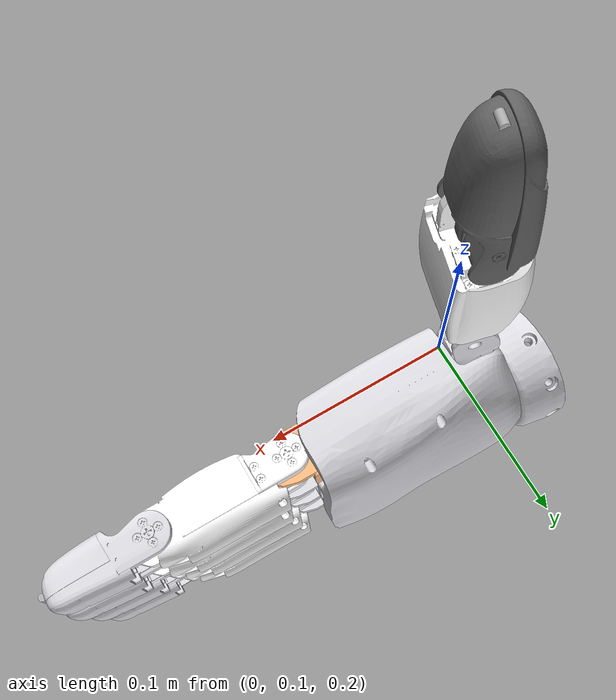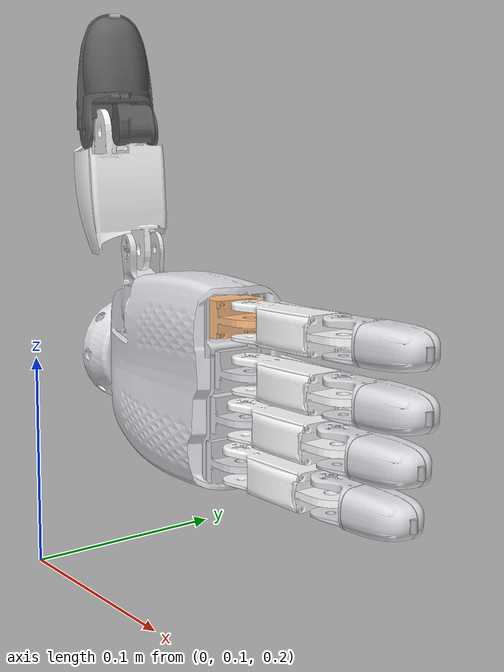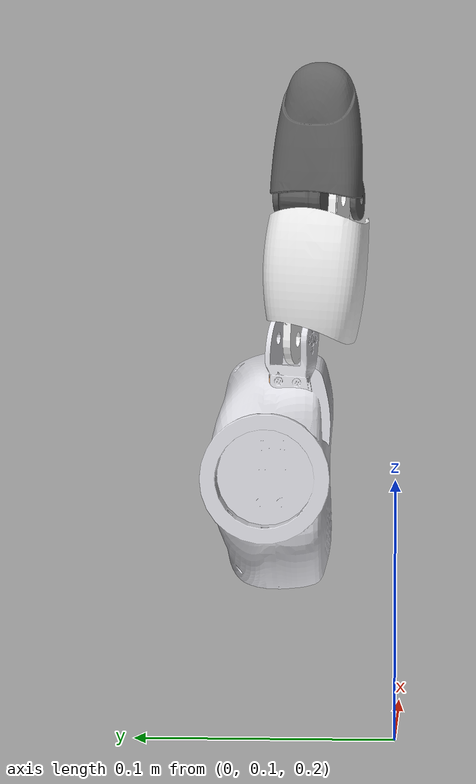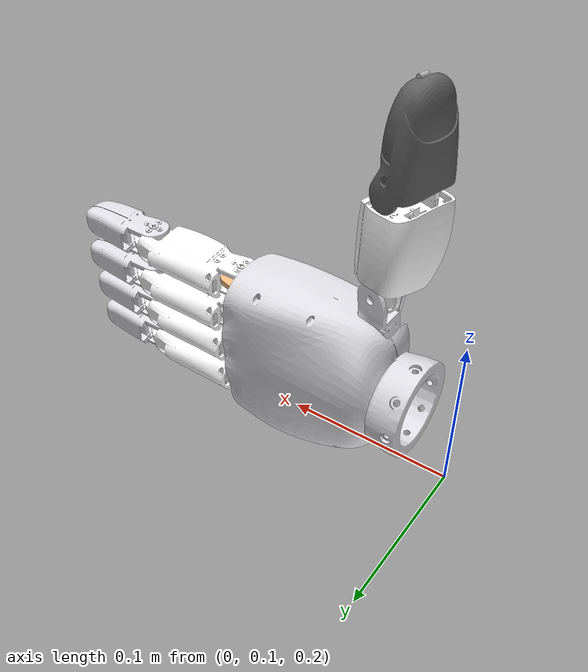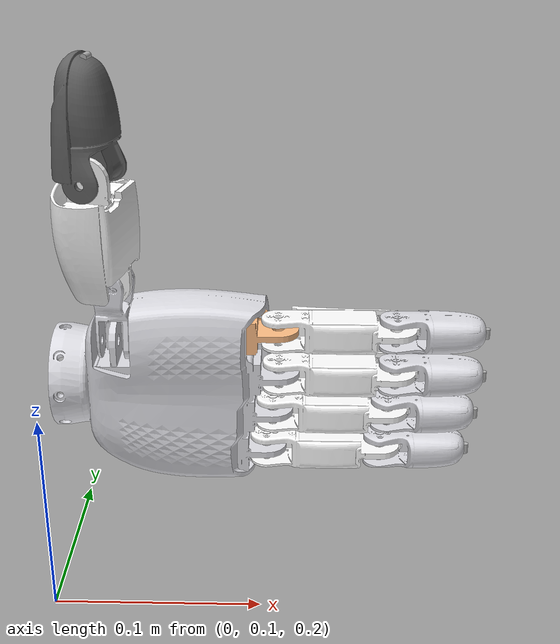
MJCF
<mujoco model="xhand_left">
  <compiler angle="radian" meshdir="meshes/" />

  <default>
    <!-- disable all contacts and use explicit collision pairs -->
    <geom density="800" condim="1" contype="0" conaffinity="0" />
    <!-- with this setting, the response time is around 1s -->
    <position kp="300" dampratio="1.0" inheritrange="1" />
    <joint damping="0.0" armature="1.0" frictionloss="0.0" />
    <site size="0.005" type="sphere" rgba="1 0 0 1" group="3" />
  </default>

  <asset>
    <texture type="skybox" builtin="gradient" rgb1="0.3 0.5 0.7" rgb2="0 0 0" width="512"
      height="3072" />
    <texture type="2d" name="left_groundplane" builtin="checker" mark="edge" rgb1="0.2 0.3 0.4"
      rgb2="0.1 0.2 0.3"
      markrgb="0.8 0.8 0.8" width="300" height="300" />
    <material name="left_groundplane" texture="left_groundplane" texuniform="true"
      texrepeat="5 5"
      reflectance="0.2" />
    <mesh name="left_hand_link" content_type="model/stl" file="left_hand_link.STL" />
    <mesh name="left_hand_thumb_bend_link" content_type="model/stl"
      file="left_hand_thumb_bend_link.STL" />
    <mesh name="left_hand_thumb_rota_link1" content_type="model/stl"
      file="left_hand_thumb_rota_link1.STL" />
    <mesh name="left_hand_thumb_rota_link2" content_type="model/stl"
      file="left_hand_thumb_rota_link2.STL" />
    <mesh name="left_hand_index_bend_link" content_type="model/stl"
      file="left_hand_index_bend_link.STL" />
    <mesh name="left_hand_index_rota_link1" content_type="model/stl"
      file="left_hand_index_rota_link1.STL" />
    <mesh name="left_hand_index_rota_link2" content_type="model/stl"
      file="left_hand_index_rota_link2.STL" />
    <mesh name="left_hand_mid_link1" content_type="model/stl" file="left_hand_mid_link1.STL" />
    <mesh name="left_hand_mid_link2" content_type="model/stl" file="left_hand_mid_link2.STL" />
    <mesh name="left_hand_ring_link1" content_type="model/stl" file="left_hand_ring_link1.STL" />
    <mesh name="left_hand_ring_link2" content_type="model/stl" file="left_hand_ring_link2.STL" />
    <mesh name="left_hand_pinky_link1" content_type="model/stl" file="left_hand_pinky_link1.STL" />
    <mesh name="left_hand_pinky_link2" content_type="model/stl" file="left_hand_pinky_link2.STL" />
    <mesh name="left_hand_thumb_rota_tip" content_type="model/stl" file="left_hand_thumb_rota_tip.STL" />
    <mesh name="left_hand_index_rota_tip" content_type="model/stl" file="left_hand_index_rota_tip.STL" />
    <mesh name="left_hand_mid_tip" content_type="model/stl" file="left_hand_mid_tip.STL" />
    <mesh name="left_hand_ring_tip" content_type="model/stl" file="left_hand_ring_tip.STL" />
    <mesh name="left_hand_pinky_tip" content_type="model/stl" file="left_hand_pinky_tip.STL" />
  </asset>

  <worldbody>
    <body name="L_forearm_ty_link" pos="0 0.15 0.3" quat="0.707107 0 -0.707107 0">
      <camera name="left_track" pos="0.868 -0.348 -0.175"
        xyaxes="0.037 0.999 -0.000 0.011 -0.000 1.000" />
      <inertial pos="0 0 0" mass="0.1" diaginertia="0.01 0.01 0.01" />
      <joint name="L_forearm_tx_link_joint" pos="0 0 0" axis="1 0 0" type="slide" range="-5 5"
      />
      <body name="L_forearm_tz_link">
        <inertial pos="0 0 0" mass="0.1" diaginertia="0.01 0.01 0.01" />
        <joint name="L_forearm_ty_link_joint" pos="0 0 0" axis="0 1 0" type="slide" range="-5 5"
        />
        <body name="L_forearm_roll_link">
          <inertial pos="0 0 0" mass="0.1" diaginertia="0.01 0.01 0.01" />
          <joint name="L_forearm_tz_link_joint" pos="0 0 0" axis="0 0 1" type="slide" range="-5 5"
          />
          <body name="L_forearm_pitch_link">
            <inertial pos="0 0 0" mass="0.1" diaginertia="0.01 0.01 0.01" />
            <joint name="L_forearm_roll_link_joint" pos="0 0 0" axis="0 0 1" range="-6.2 6.2"
            />
            <body name="L_forearm_yaw_link">
              <inertial pos="0 0 0" mass="0.1" diaginertia="0.01 0.01 0.01" />
              <joint name="L_forearm_pitch_link_joint" pos="0 0 0" axis="1 0 0" range="-6.2 6.2"
              />
              <body name="left_hand_link">
                <inertial pos="0.003326693 0.01017817 -0.05706105"
                  quat="0.08635017 0.6968598 0.7062295 0.09038768" mass="0.5393014"
                  diaginertia="0.000644606 0.000477684 0.00026465" />
                <joint name="L_forearm_yaw_link_joint" pos="0 0 0" axis="0 -1 0" range="-6.2 6.2"
                />
                <geom name="left_hand_link_visual" type="mesh" contype="0" conaffinity="0" group="1"
                  density="0" rgba="0.866667 0.866667 0.890196 1" mesh="left_hand_link" />
                <geom name="collision_hand_left_palm_0" type="mesh"
                  mesh="left_hand_link"
                  rgba="0.792157 0.819608 0.933333 1" />
                <site name="left_palm" pos="0 0 0" type="box" size="0.01 0.02 0.03" quat="0 1 -1 0" />
                <body name="left_hand_thumb_bend_link" pos="0.0228 -0.0095 -0.0305">
                  <inertial pos="-0.0144315 -0.001166536 -6.50666e-05"
                    quat="0.7321306 -0.04207065 -0.6795136 0.02182089" mass="0.01151453"
                    diaginertia="1.57533e-06 1.55076e-06 6.13913e-07" />
                  <joint name="left_hand_thumb_bend_joint" pos="0 0 0" axis="0 0 -1" range="0 1.83"
                  />
                  <geom name="left_thumb_bend_visual" type="mesh" contype="0" conaffinity="0"
                    group="1" density="0" rgba="0.890196 0.890196 0.913725 1"
                    mesh="left_hand_thumb_bend_link" />
                  <geom name="collision_hand_left_thumb_2" type="mesh"
                    mesh="left_hand_thumb_bend_link"
                    rgba="0.890196 0.890196 0.913725 1" />
                  <body name="left_hand_thumb_rota_link1" pos="0.028599 -0.0083177 0.00178"
                    quat="0.99124 -0.130499 0.00265603 -0.0201745">
                    <inertial pos="-0.0286994 -0.000353013 -0.001352106"
                      quat="0.7021874 -0.02743187 -0.6773014 -0.2178144" mass="0.1322853"
                      diaginertia="4.41087e-05 3.90795e-05 1.39818e-05" />
                    <joint name="left_hand_thumb_rota_joint1" pos="0 0 0" axis="0 1 0"
                      range="-1.05 1.57" />
                    <geom name="left_thumb_rota1_visual" type="mesh" contype="0" conaffinity="0"
                      group="1" density="0" rgba="1 1 1 1" mesh="left_hand_thumb_rota_link1" />
                    <geom name="collision_hand_left_thumb_1" type="mesh"
                      mesh="left_hand_thumb_rota_link1"
                      rgba="1 1 1 1" />
                    <body name="left_hand_thumb_rota_link2" pos="0.0553 0 0">
                      <inertial pos="-0.02284143 -0.000460794 -0.0005782516"
                        quat="-0.6896071 -0.0962808 0.7123287 0.08809048" mass="0.03516871"
                        diaginertia="9.05675e-06 7.69941e-06 3.49384e-06" />
                      <joint name="left_hand_thumb_rota_joint2" pos="0 0 0" axis="0 1 0"
                        range="-0.17 1.83" />
                      <geom name="left_thumb_rota2_visual" type="mesh" contype="0" conaffinity="0"
                        group="1" density="0" rgba="0.384314 0.384314 0.384314 1"
                        mesh="left_hand_thumb_rota_link2" />
                      <geom name="collision_hand_left_thumb_0" type="mesh"
                        mesh="left_hand_thumb_rota_link2"
                        rgba="0.384314 0.384314 0.384314 1" />
                      <geom name="collision_hand_left_thumb_tip" type="mesh"
                        pos="0.0504025 0 0"
                        mesh="left_hand_thumb_rota_tip"
                        rgba="0.698039 0.698039 0.698039 1" />
                      <geom size="0.001" pos="0.0504017 0 0" contype="0" conaffinity="0" group="1"
                        density="0" rgba="0.698039 0.698039 0.698039 1" />
                      <site name="left_thumb_tip" pos="0.0504 0 0" />
                      <site name="track_hand_left_thumb_tip" pos="0.04 0 -0.012" />
                      <site name="contact_left_thumb_tip" type="box" group="4" rgba="0 0.8 1 1" size="0.015515 0.01505 0.00711" pos="0.035355 0 -0.0042" />
                      <site name="trace_hand_left_thumb_tip" pos="0.04 0 -0.012" />
                    </body>
                  </body>
                </body>
                <body name="left_hand_index_bend_link" pos="0.0265 -0.0065 -0.0899">
                  <inertial pos="0.0001189976 -0.0007158512 -0.0111903"
                    quat="0.00083178 -0.004035523 0.004995498 0.999979" mass="0.068721"
                    diaginertia="1.70709e-05 1.64313e-05 3.42781e-06" />
                  <joint name="left_hand_index_bend_joint" pos="0 0 0" axis="0 1 0"
                    range="-0.175 0.175" />
                  <geom name="left_index_bend_visual" type="mesh" contype="0" conaffinity="0"
                    group="1" density="0" rgba="0.988235 0.737255 0.517647 1"
                    mesh="left_hand_index_bend_link" />

                  <body name="left_hand_index_rota_link1" pos="0 0 -0.0178">
                    <inertial pos="0.0001330081 0.0006329305 -0.03558687"
                      quat="-0.006912748 0.9999205 0.003662729 0.009890605" mass="0.06298297"
                      diaginertia="1.73856e-05 1.68626e-05 3.19183e-06" />
                    <joint name="left_hand_index_joint1" pos="0 0 0" axis="-1 0 0" range="0 1.92"
                    />
                    <geom name="left_index_rota1_visual" type="mesh" contype="0" conaffinity="0"
                      group="1" density="0" rgba="1 1 1 1" mesh="left_hand_index_rota_link1" />
                    <geom name="collision_hand_left_index_1" type="mesh"
                      mesh="left_hand_index_rota_link1"
                      rgba="1 1 1 1" />
                    <body name="left_hand_index_rota_link2" pos="0 0 -0.0558">
                      <inertial pos="-0.0002483621 0.001199052 -0.02137899"
                        quat="-0.6787521 -0.03469798 0.008190274 0.7335016" mass="0.01582395"
                        diaginertia="2.8328e-06 2.77713e-06 8.40076e-07" />
                      <joint name="left_hand_index_joint2" pos="0 0 0" axis="-1 0 0" range="0 1.92"
                      />
                      <geom name="left_index_rota2_visual" type="mesh" contype="0" conaffinity="0"
                        group="1" density="0" rgba="0.866667 0.866667 0.890196 1"
                        mesh="left_hand_index_rota_link2" />
                      <geom name="collision_hand_left_index_0" type="mesh"
                        mesh="left_hand_index_rota_link2"
                        rgba="0.866667 0.866667 0.890196 1" />
                      <geom name="collision_hand_left_index_tip" type="mesh"
                        pos="0 0 -0.0425"
                        mesh="left_hand_index_rota_tip"
                        rgba="0.698039 0.698039 0.698039 1" />
                      <geom size="0.001" pos="0 0 -0.0425" contype="0" conaffinity="0" group="1"
                        density="0" rgba="0.698039 0.698039 0.698039 1" />
                      <site name="left_index_tip" pos="0 0 -0.0425" />
                      <site name="track_hand_left_index_tip" pos="0 -0.004 -0.027" />
                      <site name="contact_left_index_tip" type="box" group="4" rgba="0 0.8 1 1" size="0.00832 0.00607 0.011995" pos="0 -0.00487 -0.030085" />
                      <site name="trace_hand_left_index_tip" pos="0 -0.004 -0.027" />
                    </body>
                  </body>
                </body>
                <body name="left_hand_mid_link1" pos="0.004 -0.0065 -0.1082">
                  <inertial pos="3.580491e-05 0.0005304176 -0.03327847"
                    quat="-0.03171207 0.9993015 0.01682587 0.01038419" mass="0.06298297"
                    diaginertia="1.73861e-05 1.6865e-05 3.18891e-06" />
                  <joint name="left_hand_mid_joint1" pos="0 0 0" axis="-1 0 0" range="0 1.92"
                  />
                  <geom name="left_middle_link1_visual" type="mesh" contype="0" conaffinity="0"
                    group="1" density="0" rgba="1 1 1 1" mesh="left_hand_mid_link1" />
                  <geom name="collision_hand_left_middle_1" type="mesh"
                    mesh="left_hand_mid_link1"
                    rgba="1 1 1 1" />
                  <body name="left_hand_mid_link2" pos="0 0 -0.0558">
                    <inertial pos="-0.0002483617 0.001199052 -0.02137899"
                      quat="-0.01245416 0.7159392 0.6959296 0.05438782" mass="0.01582395"
                      diaginertia="2.88792e-06 2.83727e-06 8.44807e-07" />
                    <joint name="left_hand_mid_joint2" pos="0 0 0" axis="-1 0 0" range="0 1.92"
                    />
                    <geom name="left_middle_link2_visual" type="mesh" contype="0" conaffinity="0"
                      group="1" density="0" rgba="0.866667 0.866667 0.890196 1"
                      mesh="left_hand_mid_link2" />
                    <geom name="collision_hand_left_middle_0" type="mesh"
                      mesh="left_hand_mid_link2"
                      rgba="0.866667 0.866667 0.890196 1" />
                    <geom name="collision_hand_left_middle_tip" type="mesh"
                      pos="0 0 -0.042107"
                      mesh="left_hand_mid_tip"
                      rgba="0.698039 0.698039 0.698039 1" />
                    <geom size="0.001" pos="0 0 -0.0425" contype="0" conaffinity="0" group="1"
                      density="0" rgba="0.698039 0.698039 0.698039 1" />
                    <site name="left_middle_tip" pos="0 0 -0.042107" />
                    <site name="track_hand_left_middle_tip" pos="0 -0.004 -0.027" />
                    <site name="contact_left_middle_tip" type="box" group="4" rgba="0 0.8 1 1" size="0.00832 0.00607 0.011995" pos="0 -0.00487 -0.030085" />
                    <site name="trace_hand_left_middle_tip" pos="0 -0.004 -0.027" />
                  </body>
                </body>
                <body name="left_hand_ring_link1" pos="-0.016 -0.0065 -0.1052">
                  <inertial pos="3.580491e-05 0.0005304176 -0.03327847"
                    quat="-0.03171207 0.9993015 0.01682587 0.01038419" mass="0.06298297"
                    diaginertia="1.73861e-05 1.6865e-05 3.18891e-06" />
                  <joint name="left_hand_ring_joint1" pos="0 0 0" axis="-1 0 0" range="0 1.92"
                  />
                  <geom name="left_ring_link1_visual" type="mesh" contype="0" conaffinity="0"
                    group="1" density="0" rgba="1 1 1 1" mesh="left_hand_ring_link1" />
                  <geom name="collision_hand_left_ring_1" type="mesh"
                    mesh="left_hand_ring_link1"
                    rgba="1 1 1 1" />
                  <body name="left_hand_ring_link2" pos="0 0 -0.0558">
                    <inertial pos="-0.0002483617 0.001199052 -0.02137899"
                      quat="-0.01245416 0.7159392 0.6959296 0.05438782" mass="0.01582395"
                      diaginertia="2.88792e-06 2.83727e-06 8.44807e-07" />
                    <joint name="left_hand_ring_joint2" pos="0 0 0" axis="-1 0 0" range="0 1.92"
                    />
                    <geom name="left_ring_link2_visual" type="mesh" contype="0" conaffinity="0"
                      group="1" density="0" rgba="0.866667 0.866667 0.890196 1"
                      mesh="left_hand_ring_link2" />
                    <geom name="collision_hand_left_ring_0" type="mesh"
                      mesh="left_hand_ring_link2"
                      rgba="0.866667 0.866667 0.890196 1" />
                    <geom name="collision_hand_left_ring_tip" type="mesh"
                      pos="0 0 -0.0425"
                      mesh="left_hand_ring_tip"
                      rgba="0.698039 0.698039 0.698039 1" />
                    <geom size="0.001" pos="0 0 -0.0425" contype="0" conaffinity="0" group="1"
                      density="0" rgba="0.698039 0.698039 0.698039 1" />
                    <site name="left_ring_tip" pos="0 0 -0.0425" />
                    <site name="track_hand_left_ring_tip" pos="0 -0.004 -0.027" />
                    <site name="contact_left_ring_tip" type="box" group="4" rgba="0 0.8 1 1" size="0.00832 0.00607 0.011995" pos="0 -0.00487 -0.030085" />
                    <site name="trace_hand_left_ring_tip" pos="0 -0.004 -0.027" />
                  </body>
                </body>
                <body name="left_hand_pinky_link1" pos="-0.036 -0.0065 -0.1022">
                  <inertial pos="3.580491e-05 0.0005304176 -0.03327847"
                    quat="-0.03171207 0.9993015 0.01682587 0.01038419" mass="0.06298297"
                    diaginertia="1.73861e-05 1.6865e-05 3.18891e-06" />
                  <joint name="left_hand_pinky_joint1" pos="0 0 0" axis="-1 0 0" range="0 1.92"
                  />
                  <geom name="left_pinky_link1_visual" type="mesh" contype="0" conaffinity="0"
                    group="1" density="0" rgba="1 1 1 1" mesh="left_hand_pinky_link1" />
                  <geom name="collision_hand_left_pinky_1" type="mesh"
                    mesh="left_hand_pinky_link1"
                    rgba="1 1 1 1" />
                  <body name="left_hand_pinky_link2" pos="0 0 -0.0558">
                    <inertial pos="-0.0002483617 0.001199052 -0.02137899"
                      quat="-0.01245416 0.7159392 0.6959296 0.05438782" mass="0.01582395"
                      diaginertia="2.88792e-06 2.83727e-06 8.44807e-07" />
                    <joint name="left_hand_pinky_joint2" pos="0 0 0" axis="-1 0 0" range="0 1.92"
                    />
                    <geom name="left_pinky_link2_visual" type="mesh" contype="0" conaffinity="0"
                      group="1" density="0" rgba="0.866667 0.866667 0.890196 1"
                      mesh="left_hand_pinky_link2" />
                    <geom name="collision_hand_left_pinky_0" type="mesh"
                      mesh="left_hand_pinky_link2"
                      rgba="0.866667 0.866667 0.890196 1" />
                    <geom name="collision_hand_left_pinky_tip" type="mesh"
                      pos="0 0 -0.0425"
                      mesh="left_hand_pinky_tip"
                      rgba="0.698039 0.698039 0.698039 1" />
                    <geom size="0.001" pos="0 0 -0.0425" contype="0" conaffinity="0" group="1"
                      density="0" rgba="0.698039 0.698039 0.698039 1" />
                    <site name="left_pinky_tip" pos="0 0 -0.0425" />
                    <site name="track_hand_left_pinky_tip" pos="0 -0.004 -0.027" />
                    <site name="contact_left_pinky_tip" type="box" group="4" rgba="0 0.8 1 1" size="0.00832 0.00607 0.011995" pos="0 -0.00487 -0.030085" />
                    <site name="trace_hand_left_pinky_tip" pos="0 -0.004 -0.027" />
                  </body>
                </body>
              </body>
            </body>
          </body>
        </body>
      </body>
    </body>
  </worldbody>

  <actuator>
    <!-- Global position and rotation joints -->
    <position name="L_forearm_tx_position" joint="L_forearm_tx_link_joint" kp="1000" />
    <position name="L_forearm_ty_position" joint="L_forearm_ty_link_joint" kp="1000" />
    <position name="L_forearm_tz_position" joint="L_forearm_tz_link_joint" kp="1000" />
    <position name="L_forearm_roll_position" joint="L_forearm_roll_link_joint" kp="1000" />
    <position name="L_forearm_pitch_position" joint="L_forearm_pitch_link_joint" kp="1000" />
    <position name="L_forearm_yaw_position" joint="L_forearm_yaw_link_joint" kp="1000" />

    <!-- Thumb joints -->
    <position name="left_thumb_bend_position" joint="left_hand_thumb_bend_joint" />
    <position name="left_thumb_rota1_position" joint="left_hand_thumb_rota_joint1" />
    <position name="left_thumb_rota2_position" joint="left_hand_thumb_rota_joint2" />

    <!-- Index joints -->
    <position name="left_index_bend_position" joint="left_hand_index_bend_joint" />
    <position name="left_index_joint1_position" joint="left_hand_index_joint1" />
    <position name="left_index_joint2_position" joint="left_hand_index_joint2" />

    <!-- Middle joints -->
    <position name="left_middle_joint1_position" joint="left_hand_mid_joint1" />
    <position name="left_middle_joint2_position" joint="left_hand_mid_joint2" />

    <!-- Ring joints -->
    <position name="left_ring_joint1_position" joint="left_hand_ring_joint1" />
    <position name="left_ring_joint2_position" joint="left_hand_ring_joint2" />

    <!-- Pinky joints -->
    <position name="left_pinky_joint1_position" joint="left_hand_pinky_joint1" />
    <position name="left_pinky_joint2_position" joint="left_hand_pinky_joint2" />
  </actuator>
</mujoco>
